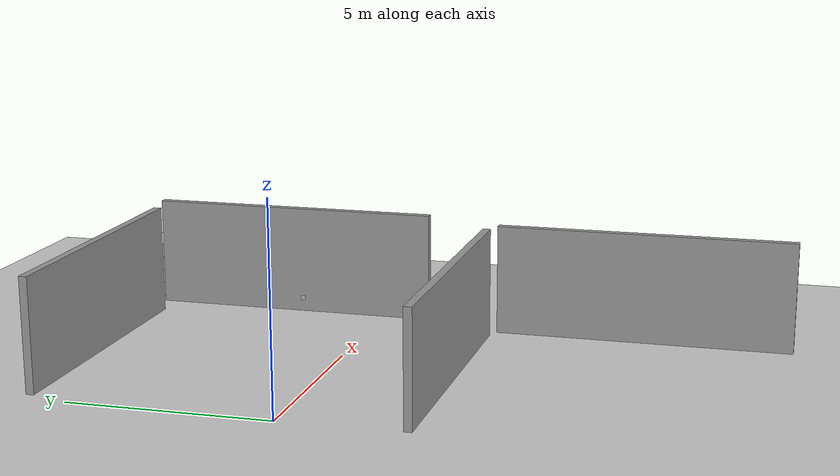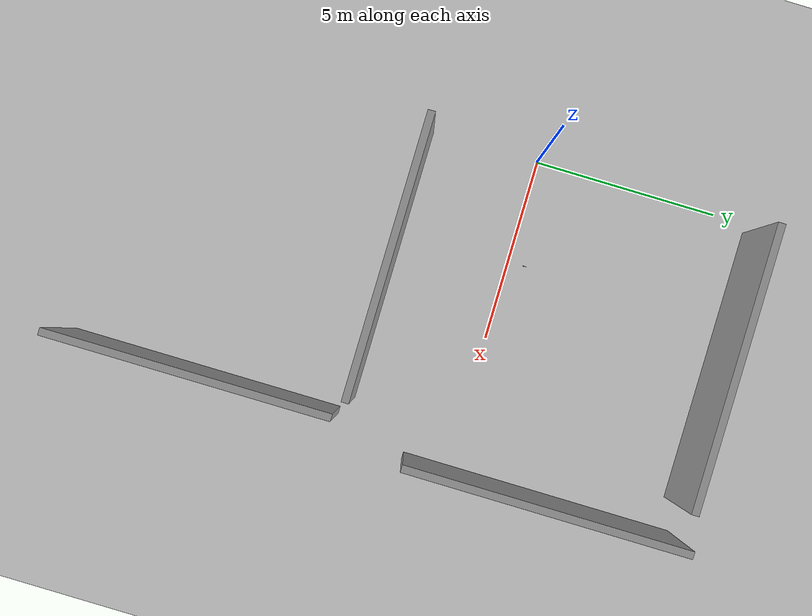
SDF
<?xml version="1.0" ?>
<sdf version="1.5">
  <world name="default">
		<scene>
			<ambient>0.0 0.0 0.0 1.0</ambient>
			<shadows>0</shadows>
		</scene>
    <include>
      <uri>model://ground_plane</uri>
    </include>
    <include>
      <uri>model://sun</uri>
    </include>

    <include>
      <name>wall1</name>
      <pose> 3.8 -3.04 0.02 0 0 0.0</pose>
      <uri>model://grey_wall</uri>
    </include>

    <include>
      <name>wall2</name>
      <pose> 8.7 2.5 0.02 0 0 1.57</pose>
      <uri>model://grey_wall</uri>
    </include>

    <include>
      <name>wall3</name>
      <pose> 4 6 0.02 0 0 0</pose>
      <uri>model://grey_wall</uri>
    </include>

    <include>
      <name>wall4</name>
      <pose>8 -7 0.02 0 0 -1.57</pose>
      <uri>model://grey_wall</uri>
    </include>

  <include>
      <name>marker</name>
      <pose>3 0.3 2 0 1.57 0</pose>
      <uri>model://marker9_10cm</uri>
    </include>

  </world>
</sdf>

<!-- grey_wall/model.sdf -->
<sdf version="1.5">
  <model name="grey_wall">
    <static>true</static>
    <link name="link">
      <pose>0 0 1.4 0 0 0</pose>
      <collision name="collision">
        <geometry>
          <box>
            <size>7.5 0.2 2.8</size>
          </box>
        </geometry>
      </collision>
      <visual name="visual">
        <cast_shadows>false</cast_shadows>
        <geometry>
          <box>
            <size>7.5 0.2 2.8</size>
          </box>
        </geometry>
        <material>
          <script>
            <uri>model://../model_source/models/grey_wall/materials/scripts</uri>
            <uri>model://../model_source/models/grey_wall/materials/textures</uri>
            <name>vrc/grey_wall</name>
          </script>
        </material>
      </visual>
    </link>
  </model>
</sdf>

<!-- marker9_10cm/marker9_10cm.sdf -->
<sdf version="1.4">
  <model name="marker9_10cm">
    <static>0</static>
    <link name="marker">
      <inertial>
        <mass>0.1</mass>
        <inertia>
          <ixx>0.000000</ixx>
          <ixy>0.000000</ixy>
          <ixz>0.000000</ixz>
          <iyy>0.000000</iyy>
          <iyz>0.000000</iyz>
          <izz>0.000000</izz>
        </inertia>
      </inertial>
      <visual name="visual">
        <geometry>
          <box>
            <size>0.1 0.1 0.001</size>
            <!-- SIZE OF THE MARKER + MARGIN -->
          </box>
        </geometry>
        <material>
          <script>
	    <uri>model://marker9_10cm/material/scripts</uri>
	    <uri>model://marker9_10cm/material/textures</uri>
            <name>Aruco/marker9_10cm</name>
          </script>
        </material>
      </visual>
      <collision name="collision">
        <geometry>
          <box>
            <size>0.1 0.1 0.02</size>
            <!-- SIZE OF THE MARKER + MARGIN -->
          </box>
        </geometry>
        <surface>
          <bounce />
          <friction>
            <ode />
          </friction>
          <contact>
            <ode />
          </contact>
        </surface>
      </collision>
      <self_collide>1</self_collide>
      <kinematic>0</kinematic>
      <gravity>1</gravity>
    </link>
  </model>
</sdf>
